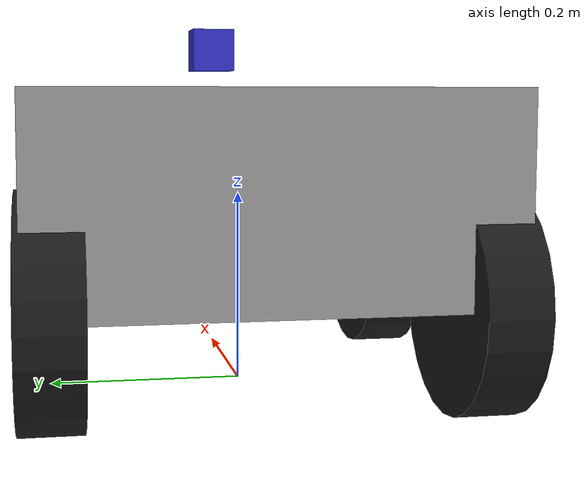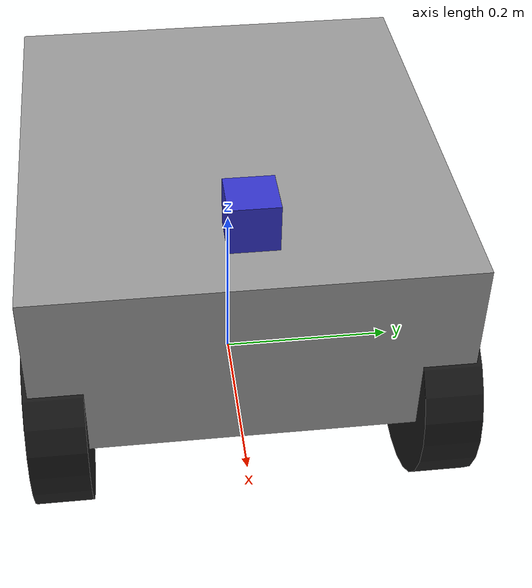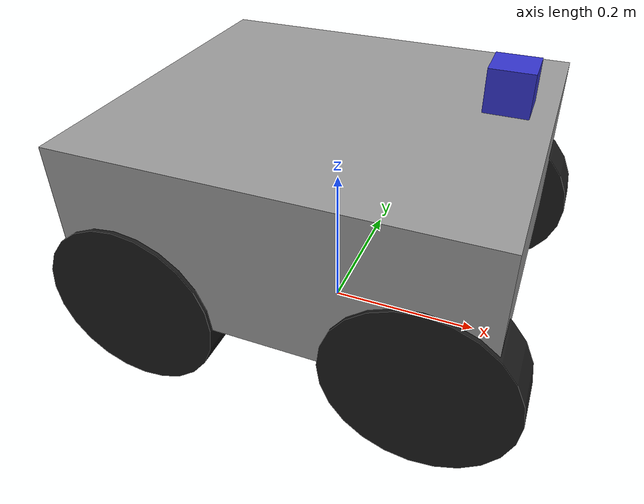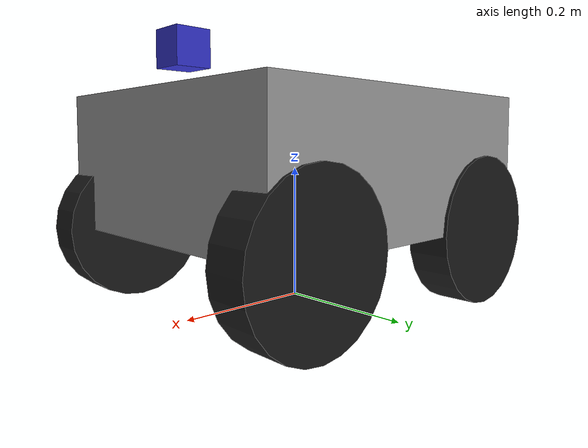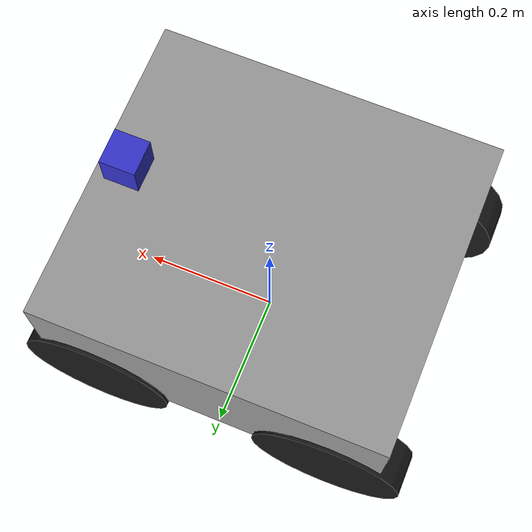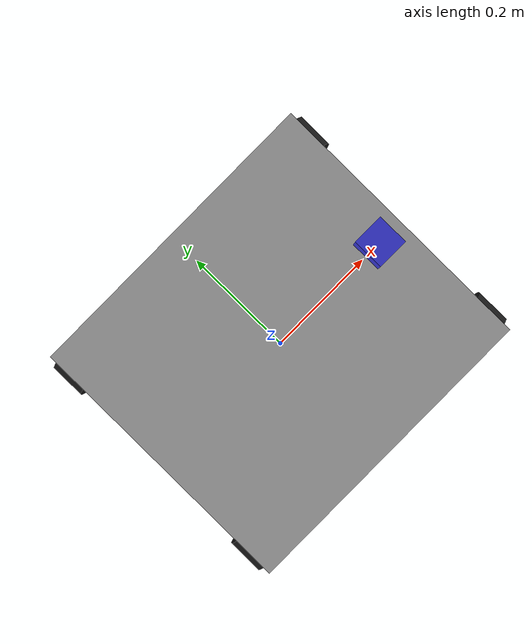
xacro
<?xml version="1.0"?>
<robot name="p3at" xmlns:xacro="http://www.ros.org/wiki/xacro">

  <!-- Basic dimensions (approx): chassis 0.50 x 0.45 x 0.20 m -->
  <xacro:property name="chassis_length" value="0.50"/>
  <xacro:property name="chassis_width"  value="0.45"/>
  <xacro:property name="chassis_height" value="0.20"/>
  <xacro:property name="chassis_mass"   value="35.0"/>

  <!-- Wheel geometry (approx) -->
  <xacro:property name="wheel_radius"   value="0.11"/>
  <xacro:property name="wheel_width"    value="0.06"/>
  <xacro:property name="wheel_mass"     value="2.0"/>

  <!-- Track width and wheelbase for plugin -->
  <xacro:property name="track_width"    value="0.40"/>
  <xacro:property name="wheelbase"      value="0.35"/>

  <!-- Camera mount -->
  <xacro:property name="cam_x" value="0.20"/>
  <xacro:property name="cam_y" value="0.00"/>
  <xacro:property name="cam_z" value="0.25"/>

  <link name="base_footprint"/>

  <joint name="base_footprint_to_base_link" type="fixed">
    <parent link="base_footprint"/>
    <child link="base_link"/>
    <origin xyz="0 0 ${wheel_radius}" rpy="0 0 0"/>
  </joint>

  <link name="base_link">
    <inertial>
      <origin xyz="0 0 0" rpy="0 0 0"/>
      <mass value="${chassis_mass}"/>
      <inertia ixx="1.0" ixy="0.0" ixz="0.0" iyy="1.0" iyz="0.0" izz="1.0"/>
    </inertial>
    <visual>
      <origin xyz="0 0 ${chassis_height/2.0}" rpy="0 0 0"/>
      <geometry>
        <box size="${chassis_length} ${chassis_width} ${chassis_height}"/>
      </geometry>
      <material name="Grey">
        <color rgba="0.6 0.6 0.6 1.0"/>
      </material>
    </visual>
    <collision>
      <origin xyz="0 0 ${chassis_height/2.0}" rpy="0 0 0"/>
      <geometry>
        <box size="${chassis_length} ${chassis_width} ${chassis_height}"/>
      </geometry>
    </collision>
  </link>

  <!-- Wheel macro -->
  <xacro:macro name="wheel" params="name x y">
    <link name="${name}_link">
      <inertial>
        <origin xyz="0 0 0" rpy="0 0 0"/>
        <mass value="${wheel_mass}"/>
        <inertia ixx="0.02" ixy="0.0" ixz="0.0" iyy="0.02" iyz="0.0" izz="0.02"/>
      </inertial>
      <visual>
        <origin xyz="0 0 0" rpy="1.57079632679 0 0"/>
        <geometry>
          <cylinder radius="${wheel_radius}" length="${wheel_width}"/>
        </geometry>
        <material name="Black">
          <color rgba="0.1 0.1 0.1 1.0"/>
        </material>
      </visual>
      <collision>
        <origin xyz="0 0 0" rpy="1.57079632679 0 0"/>
        <geometry>
          <cylinder radius="${wheel_radius}" length="${wheel_width}"/>
        </geometry>
      </collision>
    </link>

    <joint name="${name}_joint" type="continuous">
      <parent link="base_link"/>
      <child link="${name}_link"/>
      <origin xyz="${x} ${y} 0" rpy="0 0 0"/>
      <axis xyz="0 1 0"/>
      <limit effort="20" velocity="20"/>
      <dynamics damping="0.2" friction="0.2"/>
    </joint>
  </xacro:macro>

  <!-- 4 wheels (skid-steer) -->
  <xacro:wheel name="front_left_wheel"  x="${ wheelbase/2.0}" y="${ track_width/2.0}"/>
  <xacro:wheel name="rear_left_wheel"   x="${-wheelbase/2.0}" y="${ track_width/2.0}"/>
  <xacro:wheel name="front_right_wheel" x="${ wheelbase/2.0}" y="${-track_width/2.0}"/>
  <xacro:wheel name="rear_right_wheel"  x="${-wheelbase/2.0}" y="${-track_width/2.0}"/>

  <!-- RGB-D camera link -->
  <link name="camera_link">
    <inertial>
      <origin xyz="0 0 0" rpy="0 0 0"/>
      <mass value="0.3"/>
      <inertia ixx="0.001" ixy="0" ixz="0" iyy="0.001" iyz="0" izz="0.001"/>
    </inertial>
    <visual>
      <origin xyz="0 0 0" rpy="0 0 0"/>
      <geometry>
        <box size="0.05 0.05 0.05"/>
      </geometry>
      <material name="Blue">
        <color rgba="0.2 0.2 0.8 1.0"/>
      </material>
    </visual>
    <collision>
      <origin xyz="0 0 0" rpy="0 0 0"/>
      <geometry>
        <box size="0.05 0.05 0.05"/>
      </geometry>
    </collision>
  </link>

  <joint name="base_to_camera" type="fixed">
    <parent link="base_link"/>
    <child link="camera_link"/>
    <origin xyz="${cam_x} ${cam_y} ${cam_z}" rpy="0 0 0"/>
  </joint>

  <!-- Optical frame for depth images -->
  <link name="camera_depth_optical_frame"/>
  <joint name="camera_to_depth_optical" type="fixed">
    <parent link="camera_link"/>
    <child link="camera_depth_optical_frame"/>
    <origin xyz="0 0 0" rpy="-1.57079632679 0 -1.57079632679"/>
  </joint>

  <!-- Gazebo: friction -->
  <gazebo reference="front_left_wheel_link">
    <mu1>1.0</mu1>
    <mu2>1.0</mu2>
  </gazebo>
  <gazebo reference="rear_left_wheel_link">
    <mu1>1.0</mu1>
    <mu2>1.0</mu2>
  </gazebo>
  <gazebo reference="front_right_wheel_link">
    <mu1>1.0</mu1>
    <mu2>1.0</mu2>
  </gazebo>
  <gazebo reference="rear_right_wheel_link">
    <mu1>1.0</mu1>
    <mu2>1.0</mu2>
  </gazebo>

  <!-- Skid-steer drive plugin -->
  <gazebo>
    <plugin name="skid_steer_drive" filename="libgazebo_ros_skid_steer_drive.so">
      <robotNamespace>/</robotNamespace>
      <commandTopic>cmd_vel</commandTopic>
      <odometryTopic>odom</odometryTopic>
      <odometryFrame>odom</odometryFrame>
      <robotBaseFrame>base_link</robotBaseFrame>
      <broadcastTF>true</broadcastTF>

      <leftFrontJoint>front_left_wheel_joint</leftFrontJoint>
      <leftRearJoint>rear_left_wheel_joint</leftRearJoint>
      <rightFrontJoint>front_right_wheel_joint</rightFrontJoint>
      <rightRearJoint>rear_right_wheel_joint</rightRearJoint>

      <wheelSeparation>${track_width}</wheelSeparation>
      <wheelDiameter>${2.0*wheel_radius}</wheelDiameter>

      <torque>15</torque>
      <updateRate>50</updateRate>
    </plugin>
  </gazebo>

  <!-- Joint state publisher plugin (Gazebo -> /joint_states) -->
  <gazebo>
    <plugin name="joint_state_publisher" filename="libgazebo_ros_joint_state_publisher.so">
      <robotNamespace>/</robotNamespace>
      <jointName>front_left_wheel_joint, rear_left_wheel_joint, front_right_wheel_joint, rear_right_wheel_joint</jointName>
      <updateRate>50</updateRate>
      <alwaysOn>true</alwaysOn>
    </plugin>
  </gazebo>

  <!-- Depth camera plugin -->
  <gazebo reference="camera_link">
    <sensor type="depth" name="depth_camera">
      <update_rate>30</update_rate>
      <camera>
        <horizontal_fov>1.047</horizontal_fov>
        <image>
          <width>640</width>
          <height>480</height>
          <format>R8G8B8</format>
        </image>
        <clip>
          <near>0.2</near>
          <far>6.0</far>
        </clip>
      </camera>
      <plugin name="depth_camera_controller" filename="libgazebo_ros_depth_camera.so">
        <robotNamespace>/</robotNamespace>
        <cameraName>camera</cameraName>
        <frameName>camera_depth_optical_frame</frameName>
        <imageTopicName>camera/rgb/image_raw</imageTopicName>
        <cameraInfoTopicName>camera/rgb/camera_info</cameraInfoTopicName>
        <depthImageTopicName>camera/depth</depthImageTopicName>
        <depthImageCameraInfoTopicName>camera/depth/camera_info</depthImageCameraInfoTopicName>
        <pointCloudTopicName>camera/depth/points</pointCloudTopicName>
        <pointCloudCutoff>0.2</pointCloudCutoff>
        <pointCloudCutoffMax>6.0</pointCloudCutoffMax>
      </plugin>
    </sensor>
  </gazebo>

</robot>
